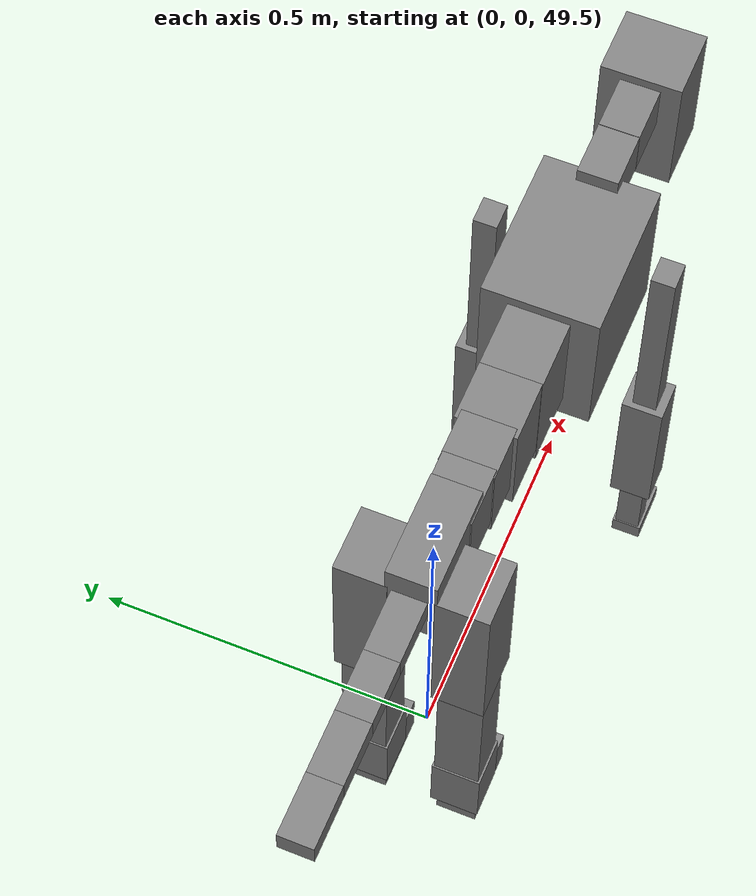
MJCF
<mujoco model="dog">

    <default>
        <joint armature="0.02" stiffness="1" damping="0.2" limited="true"/>
        <geom condim="3" friction="1 0.05 0.05" margin="0.01"/>
        <motor ctrllimited="true" ctrlrange="-1.0 1.0" forcelimited="true" gear="50"/>
    </default>

    <compiler inertiafromgeom="true" angle="radian"/>

    <option timestep="0.016" iterations="50" tolerance="1e-10" solver="Newton" jacobian="dense" cone="pyramidal"/>

    <size nconmax="20000" njmax="60000" nstack="5000000"/>
    <visual>
        <map force="0.1" zfar="30"/>
        <rgba haze="0.15 0.25 0.35 1"/>
        <quality shadowsize="2048"/>
        <global offwidth="800" offheight="800"/>
    </visual>

    <asset>
        <texture type="skybox" builtin="gradient" rgb1="0.3 0.5 0.7" rgb2="0 0 0" width="512" height="512"/>
        <texture name="texplane" type="2d" builtin="checker" rgb1=".2 .3 .4" rgb2=".1 0.15 0.2" width="512" height="512"
                 mark="cross" markrgb=".8 .8 .8"/>
        <texture name="texgeom" type="cube" builtin="flat" mark="cross" width="127" height="1278" rgb1="0.8 0.6 0.4"
                 rgb2="0.8 0.6 0.4" markrgb="1 1 1" random="0.01"/>

        <material name="matplane" reflectance="0.3" texture="texplane" texrepeat="1 1" texuniform="true"/>
        <material name="matgeom" texture="texgeom" texuniform="true" rgba="0.8 0.6 .4 1"/>
    </asset>

    <worldbody>
        <geom name="floor" pos="0 0 0" size="0 0 .25" type="plane" material="matplane" condim="3"/>

        <light directional="false" diffuse=".2 .2 .2" specular="0 0 0" pos="0 0 5" dir="0 0 -1" castshadow="false"/>
        <light mode="targetbodycom" target="torso" directional="false" diffuse=".8 .8 .8" specular="0.3 0.3 0.3"
               pos="0 0 4.0" dir="0 0 -1"/>

        <body name="root" pos="0 0 50">
            <freejoint name="root_1"/>
            <geom type="box" pos="0 0 -0.02" size="0.0774  0.0358  0.063" density="2030"/>

            <body name="spine1" pos="0.054 0 0">
                <joint name="spine1_y" axis="0 1 0" range="0 0.7" limited="true"/>
                <geom type="box" pos="0.02375 0 -0.03" size="0.04375  0.0375  0.05985" density="2030"/>

                <body name="spine2" pos="0.0612 0 0">
                    <joint name="spine2_y" axis="0 1 0" range="-0.15 0.15" limited="true"/>
                    <geom type="box" pos="0.03555  0  -0.04" size="0.04055  0.039  0.06615" density="2030"/>

                    <body name="spine3" pos="0.0730 0 0">
                        <joint name="spine3_y" axis="0 1 0" range="-0.15 0.15" limited="true"/>
                        <geom type="box" pos="0.03555  0  -0.057" size="0.04555  0.0445  0.081" density="2030"/>

                        <body name="spine4" pos="0.0780 0 0">
                            <joint name="spine4_y" axis="0 1 0" range="-0.15 0.15" limited="true"/>
                            <geom type="box" pos="0.05265  0  -0.07" size="0.05265  0.045  0.09135" density="2030"/>

                            <body name="torso" pos="0.1082 0 0">
                                <joint name="torso_y" axis="0 1 0" range="-0.15 0.15" limited="true"/>
                                <geom type="box" pos="0.11925  0  -0.085" size="0.11925  0.085  0.11745"
                                      density="2030"/>

                                <body name="neck1" pos="0.2160  0   0.0180">
                                    <joint name="neck1_y" axis="0 1 0" range="-1.2  -1" limited="true"/>
                                    <geom type="box" pos="0.0423  0  0" size="0.0423  0.03  0.036" density="2325"/>

                                    <body name="neck2" pos="0.0853  0  0">
                                        <joint name="neck2_y" axis="0 1 0" range="0.1  0" limited="true"/>
                                        <geom type="box" pos="0.0423  0  0" size="0.0423  0.03  0.036" density="2325"/>

                                        <body name="head" pos="0.0853  0  0">
                                            <joint name="head_y" axis="0 1 0" range="-0.3  -0.2" limited="true"/>
                                            <geom type="box" pos="0.0531  0  -0.055" size="0.0531  0.06  0.1044"
                                                  density="4030"/>

                                        </body>
                                    </body>
                                </body>

                                <body name="front_shoulder" pos="0.156  0   -0.0480">
                                    <joint name="front_shoulder_y" axis="0 1 0" range="-1 1.5" limited="true"/>
                                    <geom type="box" pos="0 0.13 -0.1432" size="0.0209  0.0178  0.1699" density="1158"/>
                                    <geom type="box" pos="0 -0.13 -0.1432" size="0.0209  0.0178  0.1699"
                                          density="1158"/>

                                    <body name="front_elbow" pos="0  0  -0.2864">
                                        <joint name="front_elbow_y" axis="0 1 0" range="-2 0" limited="true"/>
                                        <geom type="box" pos="0 0.13 -0.1185" size="0.0303  0.0310  0.1185"
                                              density="1081"/>
                                        <geom type="box" pos="0 -0.13 -0.1185" size="0.0303  0.0310  0.1185"
                                              density="1081"/>

                                        <body name="front_wrist" pos="0  0  -0.2371">
                                            <joint name="front_wrist_y" axis="0 1 0" range="-0.2 0" limited="true"/>
                                            <geom type="box" pos="0 0.13 -0.0646" size="0.0165  0.0184  0.0777"
                                                  density="1664"/>
                                            <geom type="box" pos="0 -0.13 -0.0646" size="0.0165  0.0184  0.0777"
                                                  density="1664"/>

                                            <body name="front_finger_end" pos="0  0  -0.1291">
                                                <joint name="front_finger_y" axis="0 1 0" range="-0.4 1"
                                                       limited="true"/>
                                                <geom type="box" pos="0.0221  0.13  0.0020"
                                                      size="0.0406  0.0221  0.0130" density="1515"/>
                                                <geom type="box" pos="0.0221  -0.13  0.0020"
                                                      size="0.0406  0.0221  0.0130" density="1515"/>

                                            </body>

                                        </body>
                                    </body>
                                </body>

                            </body>
                        </body>
                    </body>
                </body>
            </body>

            <body name="back_hip" pos="-0.03 0 -0.018">
                <joint name="back_hip_y" axis="0 1 0" range="-1.5 0.3" limited="true"/>
                <geom type="box" pos="0 0.07 -0.1086" size="0.0479  0.0376  0.1314" density="1154"/>
                <geom type="box" pos="0 -0.07 -0.1086" size="0.0479  0.0376  0.1314" density="1154"/>

                <body name="back_knee" pos="0  0  -0.2172">
                    <joint name="back_knee_y" axis="0 1 0" range="0 2.8" limited="true"/>
                    <geom type="box" pos="0 0.07 -0.1384" size="0.0335  0.0330  0.1539" density="1227"/>
                    <geom type="box" pos="0 -0.07 -0.1384" size="0.0335  0.0330  0.1539" density="1227"/>

                    <body name="back_ankle" pos="0  0  -0.2767">
                        <joint name="back_ankle_y" axis="0 1 0" range="-2.2 0" limited="true"/>
                        <geom type="box" pos="0 0.07 -0.0419" size="0.0360  0.0360  0.0532" density="1284"/>
                        <geom type="box" pos="0 -0.07 -0.0419" size="0.0360  0.0360  0.0532" density="1284"/>

                        <body name="back_toe_end" pos="0  0  -0.0839">
                            <joint name="back_toe_y" axis="0 1 0" range="-0.4 1" limited="true"/>
                            <geom type="box" pos="0.0297  0.07  -0.0205" size="0.0545  0.0297  0.0355" density="1515"/>
                            <geom type="box" pos="0.0297  -0.07  -0.0205" size="0.0545  0.0297  0.0355" density="1515"/>

                        </body>
                    </body>
                </body>
            </body>

            <body name="tail1" pos="-0.074 0 -0.006">
                <joint name="tail1_y" axis="0 1 0" range="-0.2 0.2" limited="true"/>
                <geom type="box" pos="-0.0536  0  0" size="0.045  0.025  0.0175" density="1587"/>

                <body name="tail2" pos="-0.09 0 0">
                    <joint name="tail2_y" axis="0 1 0" range="-0.2 0.2" limited="true"/>
                    <geom type="box" pos="-0.0536  0  0" size="0.045  0.025  0.0175" density="1587"/>

                    <body name="tail3" pos="-0.09 0 0">
                        <joint name="tail3_y" axis="0 1 0" range="-0.2 0.2" limited="true"/>
                        <geom type="box" pos="-0.0536  0  0" size="0.045  0.025  0.0175" density="1587"/>

                        <body name="tail4" pos="-0.09 0 0">
                            <joint name="tail4_y" axis="0 1 0" range="-0.2 0.2" limited="true"/>
                            <geom type="box" pos="-0.0536  0  0" size="0.045  0.025  0.0175" density="1587"/>

                        </body>
                    </body>
                </body>
            </body>
        </body>
    </worldbody>

    <actuator>
        <motor joint="spine1_y" forcerange="-150 150     "/>
        <motor joint="spine2_y" forcerange="-150 150     "/>
        <motor joint="spine3_y" forcerange="-150 150     "/>
        <motor joint="spine4_y" forcerange="-150 150     "/>
        <motor joint="torso_y" forcerange="-150 150     "/>
        <motor joint="neck1_y" forcerange="-100 100       "/>
        <motor joint="neck2_y" forcerange="-100 100       "/>
        <motor joint="head_y" forcerange="-150 150       "/>
        <motor joint="front_shoulder_y" forcerange="-113.59 105.34"/>
        <motor joint="front_elbow_y" forcerange="-149.82 175.43"/>
        <motor joint="front_wrist_y" forcerange="-62.15 84.76"/>
        <motor joint="front_finger_y" forcerange="-46.41 31.59"/>
        <motor joint="back_hip_y" forcerange="-375.90 324.93"/>
        <motor joint="back_knee_y" forcerange="-397.54 282.25"/>
        <motor joint="back_angle_y" forcerange="-232.35 243.68"/>
        <motor joint="back_toe_y" forcerange="-64.76 93.23"/>
        <motor joint="tail1_y" forcerange="-50 50     "/>
        <motor joint="tail2_y" forcerange="-50 50     "/>
        <motor joint="tail3_y" forcerange="-50 50     "/>
        <motor joint="tail4_y" forcerange="-50 50     "/>
    </actuator>
</mujoco>
